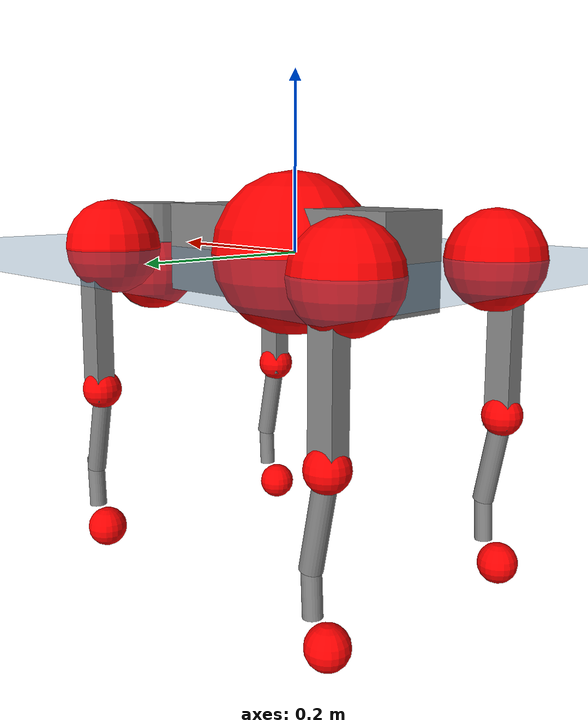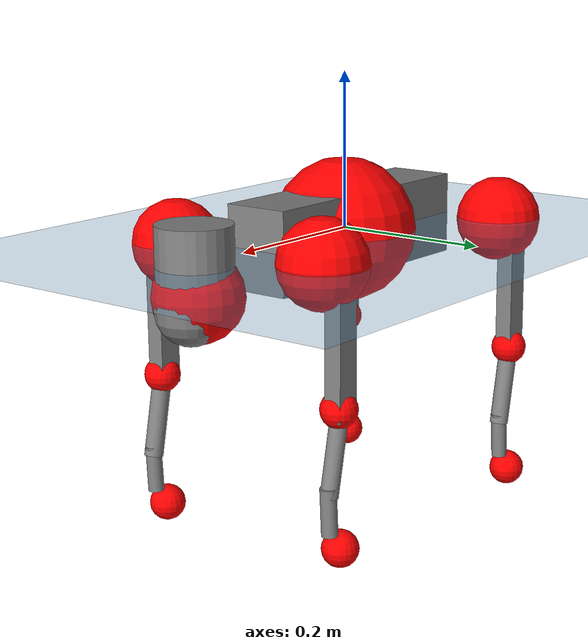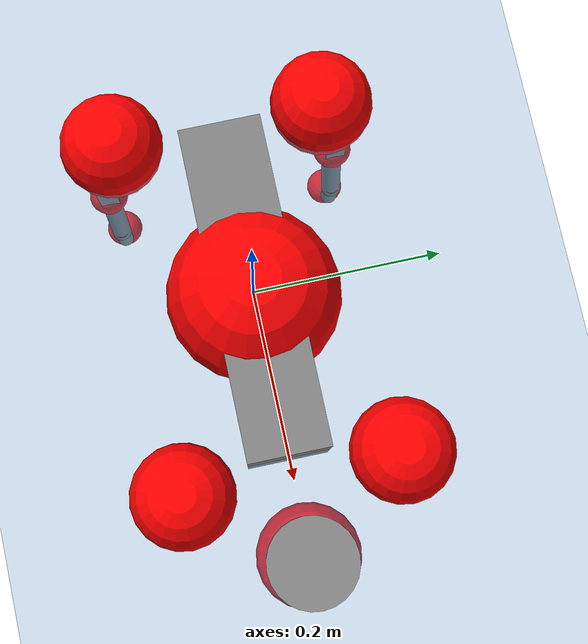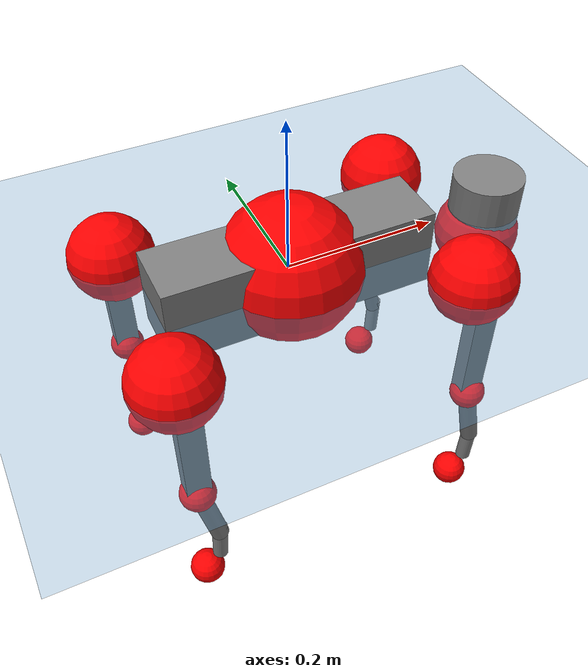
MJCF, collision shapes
<mujoco model="go2">
  <compiler angle="radian" assetdir="assets" balanceinertia="true" inertiafromgeom="false"/>

  <option timestep="0.005" density="1.2" viscosity="2e-05"/>

  <size nkey="1"/>

  <visual>
    <quality shadowsize="8192"/>
    <map shadowclip="0.5"/>
  </visual>

  <default>
    <default class="/">
      <geom contype="0" conaffinity="0" group="1" solref="-1000 -80"/>
      <site size="0.01 0.005 0.005" group="5"/>
      <general forcelimited="true" biastype="affine" gainprm="20" biasprm="0 -20 -0.5"/>
      <default class="go2">
        <joint armature="0.01" damping="0.01" frictionloss="0.2"/>
        <geom condim="1" margin="0.001"/>
        <default class="visual">
          <geom type="mesh" group="2"/>
        </default>
        <default class="collision">
          <geom group="3"/>
          <default class="foot">
            <geom size="0.022 0 0" condim="6" priority="1" friction="0.8 0.02 0.01" solimp="0.015 1 0.022"/>
          </default>
        </default>
        <default class="reward_collision_sphere">
          <geom group="5" rgba="1 0 0 1"/>
        </default>
      </default>
    </default>
  </default>

  <asset>
    <texture type="skybox" colorspace="auto" name="//unnamed_texture_0" builtin="gradient" rgb1="0.95 0.95 0.95" rgb2="0.95 0.95 0.95" width="100" height="600"/>
    <texture type="2d" colorspace="auto" name="texplane" builtin="checker" rgb1="0.345 0.575 0.748" rgb2="0.345 0.575 0.748" markrgb="1 1 1" width="512" height="512"/>
    <material name="MatPlane" class="/" texture="texplane" texuniform="true" texrepeat="2 2" specular="0.9"/>
    <material name="metal" class="/" rgba="0.9 0.95 0.95 1"/>
    <material name="black" class="/" rgba="0 0 0 1"/>
    <material name="white" class="/"/>
    <material name="gray" class="/" rgba="0.671705 0.692426 0.77427 1"/>
    <mesh name="base_0" class="/" file="base_0.obj"/>
    <mesh name="base_1" class="/" file="base_1.obj"/>
    <mesh name="base_2" class="/" file="base_2.obj"/>
    <mesh name="base_3" class="/" file="base_3.obj"/>
    <mesh name="base_4" class="/" file="base_4.obj"/>
    <mesh name="hip_0" class="/" file="hip_0.obj"/>
    <mesh name="hip_1" class="/" file="hip_1.obj"/>
    <mesh name="thigh_0" class="/" file="thigh_0.obj"/>
    <mesh name="thigh_1" class="/" file="thigh_1.obj"/>
    <mesh name="thigh_mirror_0" class="/" file="thigh_mirror_0.obj"/>
    <mesh name="thigh_mirror_1" class="/" file="thigh_mirror_1.obj"/>
    <mesh name="calf_0" class="/" file="calf_0.obj"/>
    <mesh name="calf_1" class="/" file="calf_1.obj"/>
    <mesh name="calf_mirror_0" class="/" file="calf_mirror_0.obj"/>
    <mesh name="calf_mirror_1" class="/" file="calf_mirror_1.obj"/>
    <mesh name="foot" class="/" file="foot.obj"/>
  </asset>

  <worldbody>
    <geom name="floor" class="/" size="100 100 0.125" type="plane" group="0" material="MatPlane"/>
    <light name="toplight_shadow" class="/" pos="0 0 5" dir="0.0990148 0.0990148 -0.990148" type="directional" ambient="0.04 0.04 0.04" diffuse="0.55 0.55 0.55" specular="0.12 0.12 0.12"/>
    <light name="toplight_fill" class="/" pos="0 0 5" dir="0.0990148 0.0990148 -0.990148" type="directional" castshadow="false" ambient="0.04 0.04 0.04" diffuse="0.3 0.3 0.3" specular="0.08 0.08 0.08"/>
    <body name="trunk" childclass="go2" pos="0.00240496 0.00012383 -0.00116361" quat="0.999999 0.000960439 -0.000275992 -0.000900731">
      <inertial pos="0.0180364 0.00108041 -0.00362931" quat="0.00160025 0.710171 -0.00337202 0.70402" mass="5.36561" diaginertia="0.0996407 0.0879285 0.00887549"/>
      <joint name="//unnamed_joint_0" type="free" armature="0" damping="0" frictionloss="0"/>
      <geom name="//unnamed_geom_1" class="visual" material="black" mesh="base_0"/>
      <geom name="//unnamed_geom_2" class="visual" material="black" mesh="base_1"/>
      <geom name="//unnamed_geom_3" class="visual" material="black" mesh="base_2"/>
      <geom name="//unnamed_geom_4" class="visual" material="white" mesh="base_3"/>
      <geom name="//unnamed_geom_5" class="visual" material="gray" mesh="base_4"/>
      <geom name="trunk_1" class="collision" size="0.174197 0.0432947 0.0527871" type="box"/>
      <geom name="trunk_2" class="collision" size="0.0463045 0.041674" pos="0.280813 0 0.00815665" type="cylinder"/>
      <geom name="trunk_3" class="collision" size="0.0435262" pos="0.288695 0 -0.0489399"/>
      <geom name="//unnamed_geom_9" class="reward_collision_sphere" size="0.092609"/>
      <geom name="//unnamed_geom_10" class="reward_collision_sphere" size="0.0555654" pos="0.275886 0 -0.0367049"/>
      <site name="imu" pos="-0.0235362 0.00839569 0.0481969" size="0.0092609"/>
      <camera name="track" pos="0 -1.95459 0" quat="0.707107 0.707107 0 0" mode="trackcom"/>
      <camera name="ego_camera" pos="0.307416 0 0.0367049" quat="-0.5 -0.5 0.5 0.5"/>
      <body name="FL_hip" pos="0.190588 0.0471674 0.00246679" quat="1 8.70111e-05 -7.19635e-05 -0.00035533">
        <inertial pos="-0.00615621 -0.000316446 0.00118325" quat="0.495325 0.501433 0.504475 0.498721" mass="0.524351" diaginertia="0.000835219 0.0005348 0.000173422"/>
        <joint name="FL_hip_joint" pos="0 0 0" axis="0.999928 -0.011813 0.00194847" range="-0.998593 1.06478" armature="0.00909281" damping="0.0157561" frictionloss="0.182495"/>
        <geom name="//unnamed_geom_11" class="visual" material="metal" mesh="hip_0"/>
        <geom name="//unnamed_geom_12" class="visual" material="gray" mesh="hip_1"/>
        <geom name="//unnamed_geom_13" class="collision" size="0.0426001 0.0185218" pos="0 0.0781837 0" quat="0.707107 0.707107 0 0" type="cylinder"/>
        <geom name="//unnamed_geom_14" class="reward_collision_sphere" size="0.0555654" pos="0 0.0684108 0"/>
        <body name="FL_thigh" pos="8.00002e-05 0.0938713 0.00284584" quat="0.999999 -0.00107312 -0.000715361 -5.7649e-05">
          <inertial pos="-0.00159283 -0.0238229 -0.0292803" quat="0.829769 0.0847692 -0.020051 0.551268" mass="0.885292" diaginertia="0.00543725 0.0050306 0.000315956"/>
          <joint name="FL_thigh_joint" pos="0 0 0" axis="-0.000354053 0.999983 -0.00583432" range="-1.54302 3.48663" armature="0.00901754" damping="0.01307" frictionloss="0.18424"/>
          <geom name="//unnamed_geom_15" class="visual" material="metal" mesh="thigh_0"/>
          <geom name="//unnamed_geom_16" class="visual" material="gray" mesh="thigh_1"/>
          <geom name="//unnamed_geom_17" class="collision" size="0.0986286 0.0113446 0.0157435" pos="0 0 -0.0868683" quat="0.707107 0 0.707107 0" type="box"/>
          <body name="FL_calf" pos="-0.000968706 -0.0029188 -0.173469" quat="0.999999 0.00102974 9.12909e-05 -1.56677e-05">
            <inertial pos="0.00353226 -0.000371211 -0.112384" quat="0.710465 -0.000311733 -0.0058559 0.703708" mass="0.191379" diaginertia="0.00138902 0.00137938 1.96486e-05"/>
            <joint name="FL_calf_joint" pos="0 0 0" axis="0.00837053 0.999896 -0.0117057" stiffness="0.0114615" range="-2.77786 -0.84097" armature="0.00986529" damping="0" frictionloss="0.199713"/>
            <geom name="//unnamed_geom_18" class="visual" material="gray" mesh="calf_0"/>
            <geom name="//unnamed_geom_19" class="visual" material="black" mesh="calf_1"/>
            <geom name="FL_calf0" class="collision" size="0.0111131 0.0555654" pos="0.00788246 0 -0.0489399" quat="0.994493 0 -0.104807 0" type="cylinder"/>
            <geom name="//unnamed_geom_21" class="collision" size="0.010187 0.0300979" pos="0.0197061 0 -0.120718" quat="0.999688 0 0.0249974 0" type="cylinder"/>
            <geom name="//unnamed_geom_22" class="visual" pos="0 0 -0.173737" quat="1 0 0 0" material="black" mesh="foot"/>
            <geom name="FL_foot" class="foot" size="0.0181764" pos="-0.00197061 0 -0.173737"/>
            <geom name="//unnamed_geom_24" class="reward_collision_sphere" size="0.0231522"/>
            <geom name="//unnamed_geom_25" class="reward_collision_sphere" size="0.0231522" pos="-0.00197061 0 -0.173737"/>
            <site name="FL_foot" class="foot" pos="-0.00197061 0 -0.173737" size="0.0092609"/>
          </body>
        </body>
      </body>
      <body name="FR_hip" pos="0.190229 -0.0460032 -0.00188639" quat="0.999999 0.000273764 0.00118444 -0.000143925">
        <inertial pos="-0.00341629 -0.0046328 -4.40641e-06" quat="0.489353 0.506478 0.50938 0.494516" mass="0.532804" diaginertia="0.000776555 0.000520142 0.00016471"/>
        <joint name="FR_hip_joint" pos="0 0 0" axis="0.999934 -0.0108975 0.00367156" range="-1.04912 1.05333" armature="0.00908055" damping="0.0100152" frictionloss="0.159797"/>
        <geom name="//unnamed_geom_26" class="visual" pos="0 1.40807e-09 6.03949e-08" quat="4.63268e-05 1 0 0" material="metal" mesh="hip_0"/>
        <geom name="//unnamed_geom_27" class="visual" pos="0 2.28265e-09 -1.4938e-07" quat="4.63268e-05 1 0 0" material="gray" mesh="hip_1"/>
        <geom name="//unnamed_geom_28" class="collision" size="0.0426001 0.0185218" pos="0 -0.0781837 0" quat="0.707107 0.707107 0 0" type="cylinder"/>
        <geom name="//unnamed_geom_29" class="reward_collision_sphere" size="0.0555654" pos="0 -0.0684108 0"/>
        <body name="FR_thigh" pos="0.000294803 -0.0956803 0.000103672" quat="1 5.59472e-05 1.31583e-06 1.20607e-05">
          <inertial pos="-0.00158 0.0193086 -0.0261517" quat="0.559692 -0.0207205 0.078585 0.824706" mass="0.924516" diaginertia="0.00547037 0.00513562 0.000323044"/>
          <joint name="FR_thigh_joint" pos="0 0 0" axis="0.000639693 -0.999985 0.00541749" range="-3.47191 1.62276" armature="0.00918159" damping="0.0128728" frictionloss="0.194106"/>
          <geom name="//unnamed_geom_30" class="visual" material="metal" mesh="thigh_mirror_0"/>
          <geom name="//unnamed_geom_31" class="visual" material="gray" mesh="thigh_mirror_1"/>
          <geom name="//unnamed_geom_32" class="collision" size="0.0986286 0.0113446 0.0157435" pos="0 0 -0.0868683" quat="0.707107 0 0.707107 0" type="box"/>
          <body name="FR_calf" pos="0.000996375 -0.00303601 -0.173963" quat="1 9.30897e-05 -6.3839e-05 6.73146e-05">
            <inertial pos="0.00645742 0.00058915 -0.115111" quat="0.69751 0.00234747 -0.00691574 0.716538" mass="0.191072" diaginertia="0.00138222 0.00130734 1.85988e-05"/>
            <joint name="FR_calf_joint" pos="0 0 0" axis="-0.0130813 -0.999908 0.00346391" range="0.835546 2.77142" armature="0.00928111" damping="0.0261556" frictionloss="0.179805"/>
            <geom name="//unnamed_geom_33" class="visual" material="gray" mesh="calf_mirror_0"/>
            <geom name="//unnamed_geom_34" class="visual" material="black" mesh="calf_mirror_1"/>
            <geom name="FR_calf0" class="collision" size="0.0120392 0.0555654" pos="0.00985307 0 -0.0489399" quat="0.995004 0 -0.0998334 0" type="cylinder"/>
            <geom name="//unnamed_geom_36" class="collision" size="0.010187 0.0300979" pos="0.0197061 0 -0.120718" quat="0.999688 0 0.0249974 0" type="cylinder"/>
            <geom name="//unnamed_geom_37" class="visual" pos="0 0 -0.173737" quat="1 0 0 0" material="black" mesh="foot"/>
            <geom name="FR_foot" class="foot" size="0.0217532" pos="-0.00197061 0 -0.173737"/>
            <geom name="//unnamed_geom_39" class="reward_collision_sphere" size="0.0231522"/>
            <geom name="//unnamed_geom_40" class="reward_collision_sphere" size="0.0231522" pos="-0.00197061 0 -0.173737"/>
            <site name="FR_foot" class="foot" pos="-0.00197061 0 -0.173737" size="0.0092609"/>
          </body>
        </body>
      </body>
      <body name="RL_hip" pos="-0.190845 0.0458952 -0.00285358" quat="1 3.93658e-05 0.000282933 -0.000124473">
        <inertial pos="0.00550745 0.00480524 -0.00238058" quat="0.501103 0.495831 0.506904 0.49608" mass="0.549458" diaginertia="0.000806365 0.000521123 0.000176971"/>
        <joint name="RL_hip_joint" pos="0 0 0" axis="-0.999865 0.0159155 0.00409824" stiffness="0.0111426" range="-1.03137 1.00541" armature="0.00809001" damping="0.00652522" frictionloss="0.210703"/>
        <geom name="//unnamed_geom_41" class="visual" pos="-1.47785e-09 0 -2.89693e-07" quat="4.63268e-05 0 1 0" material="metal" mesh="hip_0"/>
        <geom name="//unnamed_geom_42" class="visual" pos="-2.39578e-09 0 -2.56916e-07" quat="4.63268e-05 0 1 0" material="gray" mesh="hip_1"/>
        <geom name="//unnamed_geom_43" class="collision" size="0.0426001 0.0185218" pos="0 0.0781837 0" quat="0.707107 0.707107 0 0" type="cylinder"/>
        <geom name="//unnamed_geom_44" class="reward_collision_sphere" size="0.0555654" pos="0 0.0684108 0"/>
        <body name="RL_thigh" pos="-7.783e-05 0.0897303 0.00224379" quat="1 0.000190846 -0.000342714 -1.2578e-05">
          <inertial pos="-0.00362081 -0.0212177 -0.0277427" quat="0.829609 0.0845096 -0.0207192 0.551523" mass="0.937469" diaginertia="0.0055064 0.00509868 0.000323762"/>
          <joint name="RL_thigh_joint" pos="0 0 0" axis="0.013612 0.999907 0.000943402" stiffness="0.0118375" range="-0.521674 4.54491" armature="0.0104245" damping="0" frictionloss="0.184228"/>
          <geom name="//unnamed_geom_45" class="visual" material="metal" mesh="thigh_0"/>
          <geom name="//unnamed_geom_46" class="visual" material="gray" mesh="thigh_1"/>
          <geom name="//unnamed_geom_47" class="collision" size="0.0986286 0.0113446 0.0157435" pos="0 0 -0.0868683" quat="0.707107 0 0.707107 0" type="box"/>
          <body name="RL_calf" pos="0.000192057 0.000110374 -0.176474" quat="1 -0.000328137 0.000123432 0.00019297">
            <inertial pos="0.00604379 0.00205533 -0.115069" quat="0.714347 0.00518481 -0.00895403 0.699715" mass="0.191507" diaginertia="0.00135367 0.00130579 1.85784e-05"/>
            <joint name="RL_calf_joint" pos="0 0 0" axis="0.00140583 0.999997 0.00190295" range="-2.72594 -0.815618" armature="0.0100226" damping="0" frictionloss="0.209101"/>
            <geom name="//unnamed_geom_48" class="visual" material="gray" mesh="calf_0"/>
            <geom name="//unnamed_geom_49" class="visual" material="black" mesh="calf_1"/>
            <geom name="RL_calf0" class="collision" size="0.0120392 0.0555654" pos="0.00985307 0 -0.0489399" quat="0.995004 0 -0.0998334 0" type="cylinder"/>
            <geom name="//unnamed_geom_51" class="collision" size="0.010187 0.0300979" pos="0.0197061 0 -0.120718" quat="0.999688 0 0.0249974 0" type="cylinder"/>
            <geom name="//unnamed_geom_52" class="visual" pos="0 0 -0.173737" quat="1 0 0 0" material="black" mesh="foot"/>
            <geom name="RL_foot" class="foot" size="0.0167999" pos="-0.00197061 0 -0.173737"/>
            <geom name="//unnamed_geom_54" class="reward_collision_sphere" size="0.0231522"/>
            <geom name="//unnamed_geom_55" class="reward_collision_sphere" size="0.0231522" pos="-0.00197061 0 -0.173737"/>
            <site name="RL_foot" class="foot" pos="-0.00197061 0 -0.173737" size="0.0092609"/>
          </body>
        </body>
      </body>
      <body name="RR_hip" pos="-0.190267 -0.0475179 -0.00169973" quat="0.999999 0.000820982 -0.00012707 -0.000697177">
        <inertial pos="0.00785416 0.000839221 -0.00283894" quat="0.504225 0.501955 0.488271 0.505361" mass="0.537424" diaginertia="0.000812512 0.000526037 0.000173501"/>
        <joint name="RR_hip_joint" pos="0 0 0" axis="-0.999914 0.00446115 0.0123604" stiffness="0.0075396" range="-1.03903 1.02814" armature="0.0086773" damping="0.0114845" frictionloss="0.175351"/>
        <geom name="//unnamed_geom_56" class="visual" pos="1.47757e-09 1.40807e-09 -3.50088e-07" quat="2.14617e-09 4.63268e-05 4.63268e-05 -1" material="metal" mesh="hip_0"/>
        <geom name="//unnamed_geom_57" class="visual" pos="2.39646e-09 2.28265e-09 -1.07537e-07" quat="2.14617e-09 4.63268e-05 4.63268e-05 -1" material="gray" mesh="hip_1"/>
        <geom name="//unnamed_geom_58" class="collision" size="0.0426001 0.0185218" pos="0 -0.0781837 0" quat="0.707107 0.707107 0 0" type="cylinder"/>
        <geom name="//unnamed_geom_59" class="reward_collision_sphere" size="0.0555654" pos="0 -0.0684108 0"/>
        <body name="RR_thigh" pos="0.00112204 -0.0928868 -0.00203253" quat="1 1.56536e-05 4.15012e-05 3.01493e-05">
          <inertial pos="-0.00244261 0.0217836 -0.0267807" quat="0.550918 -0.0190625 0.0856384 0.829935" mass="0.881993" diaginertia="0.00559017 0.00534621 0.000315465"/>
          <joint name="RR_thigh_joint" pos="0 0 0" axis="0.00535818 -0.999944 -0.00912254" stiffness="0.00223535" range="-4.53958 0.578989" armature="0.0095226" damping="0.00951451" frictionloss="0.175435"/>
          <geom name="//unnamed_geom_60" class="visual" material="metal" mesh="thigh_mirror_0"/>
          <geom name="//unnamed_geom_61" class="visual" material="gray" mesh="thigh_mirror_1"/>
          <geom name="//unnamed_geom_62" class="collision" size="0.0986286 0.0113446 0.0157435" pos="0 0 -0.0868683" quat="0.707107 0 0.707107 0" type="box"/>
          <body name="RR_calf" pos="-0.000386116 -0.0011917 -0.17303" quat="1 -4.4055e-06 3.14467e-05 1.70413e-05">
            <inertial pos="0.00347794 -0.000352463 -0.115963" quat="0.708637 -0.00617153 0.00520905 0.705527" mass="0.192718" diaginertia="0.00139452 0.00131846 1.99106e-05"/>
            <joint name="RR_calf_joint" pos="0 0 0" axis="-0.0193092 -0.999808 -0.00336533" stiffness="0.00112218" range="0.844873 2.72407" armature="0.00955621" damping="0.0247221" frictionloss="0.190697"/>
            <geom name="//unnamed_geom_63" class="visual" material="gray" mesh="calf_mirror_0"/>
            <geom name="//unnamed_geom_64" class="visual" material="black" mesh="calf_mirror_1"/>
            <geom name="RR_calf0" class="collision" size="0.0120392 0.0555654" pos="0.00985307 0 -0.0489399" quat="0.995004 0 -0.0998334 0" type="cylinder"/>
            <geom name="//unnamed_geom_66" class="collision" size="0.010187 0.0300979" pos="0.0197061 0 -0.120718" quat="0.999688 0 0.0249974 0" type="cylinder"/>
            <geom name="//unnamed_geom_67" class="visual" pos="0 0 -0.173737" quat="1 0 0 0" material="black" mesh="foot"/>
            <geom name="RR_foot" class="foot" size="0.020263" pos="-0.00197061 0 -0.173737"/>
            <geom name="//unnamed_geom_69" class="reward_collision_sphere" size="0.0231522"/>
            <geom name="//unnamed_geom_70" class="reward_collision_sphere" size="0.0231522" pos="-0.00197061 0 -0.173737"/>
            <site name="RR_foot" class="foot" pos="-0.00197061 0 -0.173737" size="0.0092609"/>
          </body>
        </body>
      </body>
    </body>
  </worldbody>

  <contact>
    <pair class="/" geom1="floor" geom2="FL_foot" name="//unnamed_contact_0"/>
    <pair class="/" geom1="floor" geom2="FR_foot" name="//unnamed_contact_1"/>
    <pair class="/" geom1="floor" geom2="RL_foot" name="//unnamed_contact_2"/>
    <pair class="/" geom1="floor" geom2="RR_foot" name="//unnamed_contact_3"/>
  </contact>

  <actuator>
    <general name="FL_hip" class="/" joint="FL_hip_joint" forcerange="-21.7767 21.7767" gainprm="19.5123" biasprm="0 -19.5123 -0.435041"/>
    <general name="FL_thigh" class="/" joint="FL_thigh_joint" forcerange="-20.7007 20.7007" gainprm="19.5123" biasprm="0 -19.5123 -0.435041"/>
    <general name="FL_calf" class="/" joint="FL_calf_joint" forcerange="-43.4766 43.4766" gainprm="19.5123" biasprm="0 -19.5123 -0.435041"/>
    <general name="FR_hip" class="/" joint="FR_hip_joint" forcerange="-21.5275 21.5275" gainprm="19.5123" biasprm="0 -19.5123 -0.435041"/>
    <general name="FR_thigh" class="/" joint="FR_thigh_joint" forcerange="-23.2132 23.2132" gainprm="19.5123" biasprm="0 -19.5123 -0.435041"/>
    <general name="FR_calf" class="/" joint="FR_calf_joint" forcerange="-40.8905 40.8905" gainprm="19.5123" biasprm="0 -19.5123 -0.435041"/>
    <general name="RL_hip" class="/" joint="RL_hip_joint" forcerange="-24.0408 24.0408" gainprm="19.5123" biasprm="0 -19.5123 -0.435041"/>
    <general name="RL_thigh" class="/" joint="RL_thigh_joint" forcerange="-21.0268 21.0268" gainprm="19.5123" biasprm="0 -19.5123 -0.435041"/>
    <general name="RL_calf" class="/" joint="RL_calf_joint" forcerange="-37.8235 37.8235" gainprm="19.5123" biasprm="0 -19.5123 -0.435041"/>
    <general name="RR_hip" class="/" joint="RR_hip_joint" forcerange="-20.0195 20.0195" gainprm="19.5123" biasprm="0 -19.5123 -0.435041"/>
    <general name="RR_thigh" class="/" joint="RR_thigh_joint" forcerange="-24.1647 24.1647" gainprm="19.5123" biasprm="0 -19.5123 -0.435041"/>
    <general name="RR_calf" class="/" joint="RR_calf_joint" forcerange="-40.1342 40.1342" gainprm="19.5123" biasprm="0 -19.5123 -0.435041"/>
  </actuator>

  <sensor>
    <gyro site="imu" name="imu_angular_velocity"/>
    <velocimeter site="imu" name="imu_linear_velocity"/>
    <framelinvel objtype="site" objname="FL_foot" name="FL_foot_global_linear_velocity"/>
    <framelinvel objtype="site" objname="FR_foot" name="FR_foot_global_linear_velocity"/>
    <framelinvel objtype="site" objname="RL_foot" name="RL_foot_global_linear_velocity"/>
    <framelinvel objtype="site" objname="RR_foot" name="RR_foot_global_linear_velocity"/>
  </sensor>

  <keyframe>
    <key name="home" qpos="0 0 0.325 1 0 0 0 0.1 0.8 -1.5 -0.1 -0.8 1.5 -0.1 0.8 -1.5 0.1 -0.8 1.5"/>
  </keyframe>
</mujoco>
